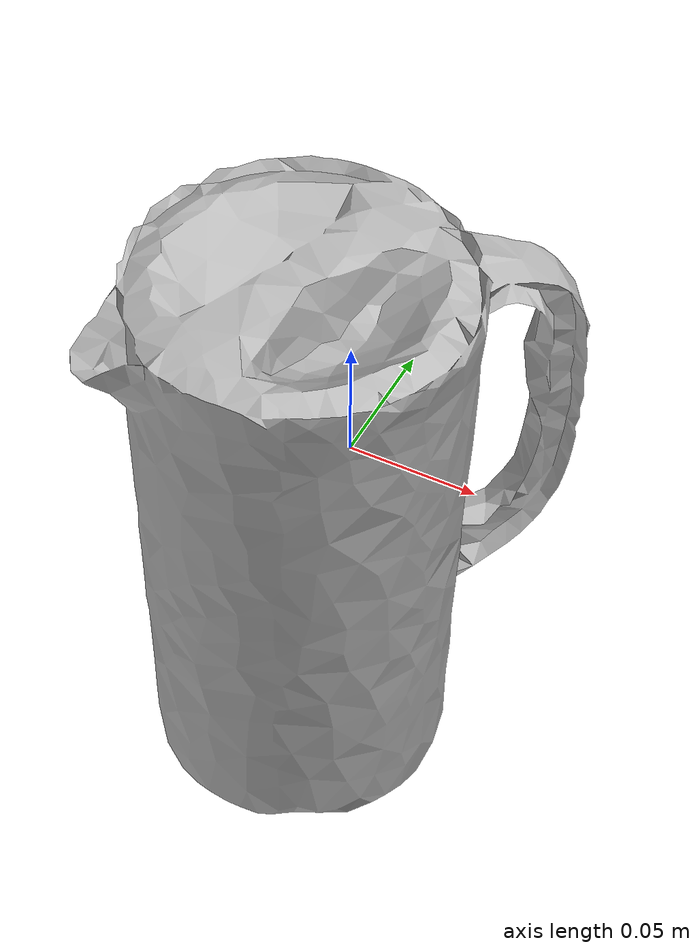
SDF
<?xml version="1.0"?>
<sdf version="1.7">
    <model name='019_pitcher_base'>
        <link name='019_pitcher_base_link'>
            <inertial>
                <!-- Obtained by Meshlab -->
                <pose>-0.002482 -0.004585 0.000009 0 0 0</pose>
            </inertial>
            <collision name='019_pitcher_base_collision'>
                <surface>
                    <friction>
                        <ode>
                            <mu>1</mu>
                            <mu2>1</mu2>
                        </ode>
                    </friction>
                </surface>
                <max_contacts>1</max_contacts>
                <geometry>
                    <mesh>
                        <uri>model://019_pitcher_base/textured.obj</uri>
                    </mesh>
                </geometry>
            </collision>
            <visual name='019_pitcher_base_visual'>
                <geometry>
                    <mesh>
                        <uri>model://019_pitcher_base/textured.obj</uri>
                    </mesh>
                </geometry>
            </visual>
        </link>

        <joint name="world_to_base_link" type="fixed">
            <parent>world</parent>
            <child>019_pitcher_base_link</child>
        </joint>
    </model>
</sdf>
